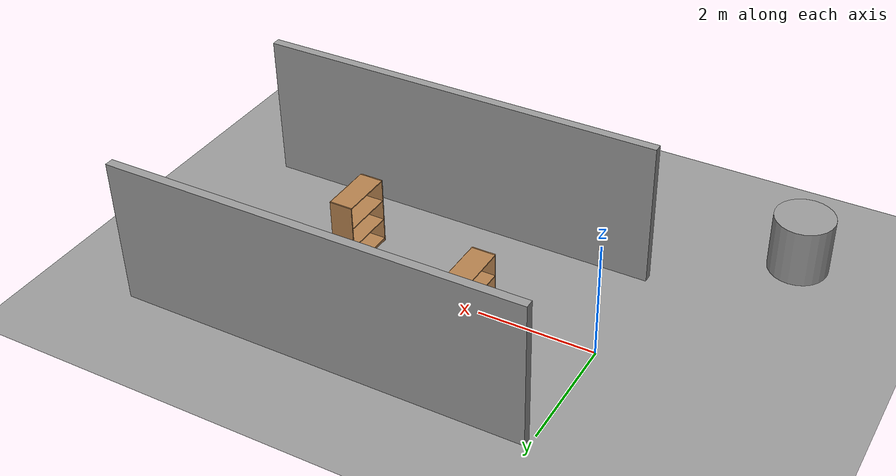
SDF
<sdf version="1.6">
 <world name="default">
  <light name="sun" type="directional">
   <pose>0 0 10 0 -0 0</pose>
   <diffuse>0.8 0.8 0.8 1</diffuse>
   <specular>0.2 0.2 0.2 1</specular>
   <attenuation>
    <range>1000</range>
    <constant>0.9</constant>
    <linear>0.01</linear>
    <quadratic>0.001</quadratic>
   </attenuation>
   <direction>0.5 0.1 -0.9</direction>
  </light>
  <scene><ambient>0.4 0.4 0.4 1</ambient><background>0.7 0.7 0.7 1</background><shadows>1</shadows></scene>
  <physics name="default_physics" default="0" type="ode">
   <max_step_size>0.01</max_step_size>
   <real_time_factor>1</real_time_factor>
   <real_time_update_rate>100</real_time_update_rate>
  </physics>
  <model name="bookshelf">
   <static>1</static>
   <link name="link">
    <inertial><mass>1</mass></inertial>
    <collision name="back">
     <pose>0 0.005 0.6 0 -0 0</pose>
     <geometry><box><size>0.9 0.01 1.2</size></box></geometry>
    </collision>
    <visual name="visual1">
     <pose>0 0.005 0.6 0 -0 0</pose>
     <geometry><box><size>0.9 0.01 1.2</size></box></geometry>
     <material>
      <script><uri>file://media/materials/scripts/gazebo.material</uri><name>Gazebo/Wood</name></script>
     </material>
    </visual>
    <collision name="left_side">
     <pose>0.45 -0.195 0.6 0 -0 0</pose>
     <geometry><box><size>0.02 0.4 1.2</size></box></geometry>
    </collision>
    <visual name="visual2">
     <pose>0.45 -0.195 0.6 0 -0 0</pose>
     <geometry><box><size>0.02 0.4 1.2</size></box></geometry>
     <material>
      <script><uri>file://media/materials/scripts/gazebo.material</uri><name>Gazebo/Wood</name></script>
     </material>
    </visual>
    <collision name="right_side">
     <pose>-0.45 -0.195 0.6 0 -0 0</pose>
     <geometry><box><size>0.02 0.4 1.2</size></box></geometry>
    </collision>
    <visual name="visual3">
     <pose>-0.45 -0.195 0.6 0 -0 0</pose>
     <geometry><box><size>0.02 0.4 1.2</size></box></geometry>
     <material>
      <script><uri>file://media/materials/scripts/gazebo.material</uri><name>Gazebo/Wood</name></script>
     </material>
    </visual>
    <collision name="bottom">
     <pose>0 -0.195 0.03 0 -0 0</pose>
     <geometry><box><size>0.88 0.4 0.06</size></box></geometry>
    </collision>
    <visual name="visual4">
     <pose>0 -0.195 0.03 0 -0 0</pose>
     <geometry><box><size>0.88 0.4 0.06</size></box></geometry>
     <material>
      <script><uri>file://media/materials/scripts/gazebo.material</uri><name>Gazebo/Wood</name></script>
     </material>
    </visual>
    <collision name="top">
     <pose>0 -0.195 1.19 0 -0 0</pose>
     <geometry><box><size>0.88 0.4 0.02</size></box></geometry>
    </collision>
    <visual name="visual5">
     <pose>0 -0.195 1.19 0 -0 0</pose>
     <geometry><box><size>0.88 0.4 0.02</size></box></geometry>
     <material>
      <script><uri>file://media/materials/scripts/gazebo.material</uri><name>Gazebo/Wood</name></script>
     </material>
    </visual>
    <collision name="low_shelf">
     <pose>0 -0.195 0.43 0 -0 0</pose>
     <geometry><box><size>0.88 0.4 0.02</size></box></geometry>
    </collision>
    <visual name="visual6">
     <pose>0 -0.195 0.43 0 -0 0</pose>
     <geometry><box><size>0.88 0.4 0.02</size></box></geometry>
     <material>
      <script><uri>file://media/materials/scripts/gazebo.material</uri><name>Gazebo/Wood</name></script>
     </material>
    </visual>
    <collision name="high_shelf">
     <pose>0 -0.195 0.8 0 -0 0</pose>
     <geometry><box><size>0.88 0.4 0.02</size></box></geometry>
    </collision>
    <visual name="visual7">
     <pose>0 -0.195 0.8 0 -0 0</pose>
     <geometry><box><size>0.88 0.4 0.02</size></box></geometry>
     <material>
      <script><uri>file://media/materials/scripts/gazebo.material</uri><name>Gazebo/Wood</name></script>
     </material>
    </visual>
    <velocity_decay><linear>0</linear><angular>0</angular></velocity_decay>
   </link>
   <pose>2.1207 0.421991 0.024508 0 0 -1.57732</pose>
  </model>
  <model name="ground_plane_0">
   <static>1</static>
   <link name="link">
    <collision name="collision">
     <geometry><plane><normal>0 0 1</normal><size>100 100</size></plane></geometry>
     <surface><friction><ode><mu>100</mu><mu2>50</mu2></ode></friction></surface>
    </collision>
    <visual name="visual">
     <cast_shadows>0</cast_shadows>
     <geometry><plane><normal>0 0 1</normal><size>100 100</size></plane></geometry>
     <material>
      <script><uri>file://media/materials/scripts/gazebo.material</uri><name>Gazebo/Grey</name></script>
     </material>
    </visual>
    <velocity_decay><linear>0</linear><angular>0</angular></velocity_decay>
   </link>
   <pose>0.497681 0 0 0 -0 0</pose>
  </model>
  <model name="unit_cylinder_1">
   <pose>-2 -3.4888 0.49912 0 -0 0</pose>
   <link name="link">
    <inertial>
     <mass>1</mass>
     <inertia><ixx>1</ixx><ixy>0</ixy><ixz>0</ixz><iyy>1</iyy><iyz>0</iyz><izz>1</izz></inertia>
    </inertial>
    <collision name="collision">
     <geometry><cylinder><radius>0.5</radius><length>1</length></cylinder></geometry>
    </collision>
    <visual name="visual">
     <geometry><cylinder><radius>0.5</radius><length>1</length></cylinder></geometry>
     <material>
      <script><uri>file://media/materials/scripts/gazebo.material</uri><name>Gazebo/Grey</name></script>
     </material>
    </visual>
    <velocity_decay><linear>0</linear><angular>0</angular></velocity_decay>
   </link>
   <static>0</static>
  </model>
  <gravity>0 0 -9.8</gravity>
  <magnetic_field>6e-06 2.3e-05 -4.2e-05</magnetic_field>
  <atmosphere type="adiabatic"/>
  <spherical_coordinates>
   <surface_model>EARTH_WGS84</surface_model>
   <latitude_deg>0</latitude_deg>
   <longitude_deg>0</longitude_deg>
   <elevation>0</elevation>
   <heading_deg>0</heading_deg>
  </spherical_coordinates>
  <model name="Untitled">
   <pose>3.53822 0.060391 0 0 -0 0</pose>
   <link name="Wall_3">
    <collision name="Wall_3_Collision">
     <geometry><box><size>7 0.15 2.5</size></box></geometry>
     <pose>0 0 1.25 0 -0 0</pose>
    </collision>
    <visual name="Wall_3_Visual">
     <pose>0 0 1.25 0 -0 0</pose>
     <geometry><box><size>7 0.15 2.5</size></box></geometry>
     <material>
      <script><uri>file://media/materials/scripts/gazebo.material</uri><name>Gazebo/Grey</name></script>
      <ambient>1 1 1 1</ambient>
     </material>
    </visual>
    <pose>-0.015 -2.10575 0 0 -0 0</pose>
   </link>
   <link name="Wall_6">
    <collision name="Wall_6_Collision">
     <geometry><box><size>7 0.15 2.5</size></box></geometry>
     <pose>0 0 1.25 0 -0 0</pose>
    </collision>
    <visual name="Wall_6_Visual">
     <pose>0 0 1.25 0 -0 0</pose>
     <geometry><box><size>7 0.15 2.5</size></box></geometry>
     <material>
      <script><uri>file://media/materials/scripts/gazebo.material</uri><name>Gazebo/Grey</name></script>
      <ambient>1 1 1 1</ambient>
     </material>
    </visual>
    <pose>0.015 2.10575 0 0 -0 0</pose>
   </link>
   <static>1</static>
  </model>
  <model name="bookshelf_clone">
   <static>1</static>
   <link name="link">
    <inertial><mass>1</mass></inertial>
    <collision name="back">
     <pose>0 0.005 0.6 0 -0 0</pose>
     <geometry><box><size>0.9 0.01 1.2</size></box></geometry>
    </collision>
    <visual name="visual1">
     <pose>0 0.005 0.6 0 -0 0</pose>
     <geometry><box><size>0.9 0.01 1.2</size></box></geometry>
     <material>
      <script><uri>file://media/materials/scripts/gazebo.material</uri><name>Gazebo/Wood</name></script>
     </material>
    </visual>
    <collision name="left_side">
     <pose>0.45 -0.195 0.6 0 -0 0</pose>
     <geometry><box><size>0.02 0.4 1.2</size></box></geometry>
    </collision>
    <visual name="visual2">
     <pose>0.45 -0.195 0.6 0 -0 0</pose>
     <geometry><box><size>0.02 0.4 1.2</size></box></geometry>
     <material>
      <script><uri>file://media/materials/scripts/gazebo.material</uri><name>Gazebo/Wood</name></script>
     </material>
    </visual>
    <collision name="right_side">
     <pose>-0.45 -0.195 0.6 0 -0 0</pose>
     <geometry><box><size>0.02 0.4 1.2</size></box></geometry>
    </collision>
    <visual name="visual3">
     <pose>-0.45 -0.195 0.6 0 -0 0</pose>
     <geometry><box><size>0.02 0.4 1.2</size></box></geometry>
     <material>
      <script><uri>file://media/materials/scripts/gazebo.material</uri><name>Gazebo/Wood</name></script>
     </material>
    </visual>
    <collision name="bottom">
     <pose>0 -0.195 0.03 0 -0 0</pose>
     <geometry><box><size>0.88 0.4 0.06</size></box></geometry>
    </collision>
    <visual name="visual4">
     <pose>0 -0.195 0.03 0 -0 0</pose>
     <geometry><box><size>0.88 0.4 0.06</size></box></geometry>
     <material>
      <script><uri>file://media/materials/scripts/gazebo.material</uri><name>Gazebo/Wood</name></script>
     </material>
    </visual>
    <collision name="top">
     <pose>0 -0.195 1.19 0 -0 0</pose>
     <geometry><box><size>0.88 0.4 0.02</size></box></geometry>
    </collision>
    <visual name="visual5">
     <pose>0 -0.195 1.19 0 -0 0</pose>
     <geometry><box><size>0.88 0.4 0.02</size></box></geometry>
     <material>
      <script><uri>file://media/materials/scripts/gazebo.material</uri><name>Gazebo/Wood</name></script>
     </material>
    </visual>
    <collision name="low_shelf">
     <pose>0 -0.195 0.43 0 -0 0</pose>
     <geometry><box><size>0.88 0.4 0.02</size></box></geometry>
    </collision>
    <visual name="visual6">
     <pose>0 -0.195 0.43 0 -0 0</pose>
     <geometry><box><size>0.88 0.4 0.02</size></box></geometry>
     <material>
      <script><uri>file://media/materials/scripts/gazebo.material</uri><name>Gazebo/Wood</name></script>
     </material>
    </visual>
    <collision name="high_shelf">
     <pose>0 -0.195 0.8 0 -0 0</pose>
     <geometry><box><size>0.88 0.4 0.02</size></box></geometry>
    </collision>
    <visual name="visual7">
     <pose>0 -0.195 0.8 0 -0 0</pose>
     <geometry><box><size>0.88 0.4 0.02</size></box></geometry>
     <material>
      <script><uri>file://media/materials/scripts/gazebo.material</uri><name>Gazebo/Wood</name></script>
     </material>
    </visual>
    <velocity_decay><linear>0</linear><angular>0</angular></velocity_decay>
   </link>
   <pose>4.66578 -0.451733 0.024508 0 0 -1.57732</pose>
  </model>
 </world>
</sdf>
